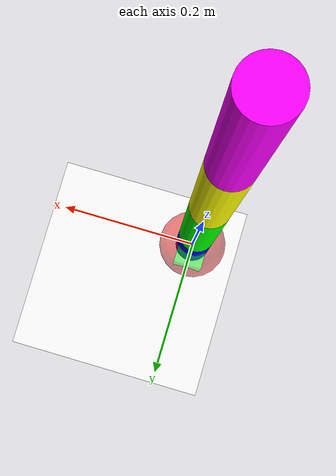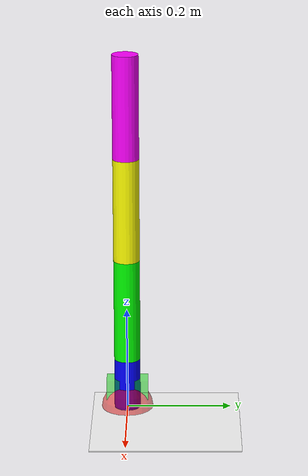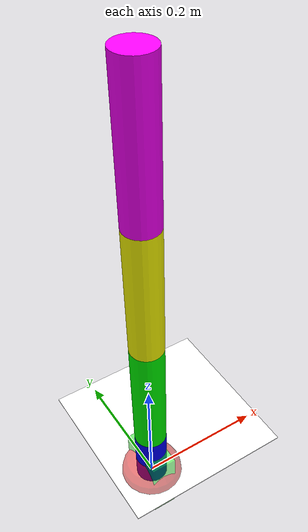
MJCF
<mujoco model="threejoint">

    <custom>
        <numeric name="START_ANGLES" data="0.0 0.0 0.0"/>
    </custom>

    <contact>
        <exclude body1="hand" body2="EE"/>
        <exclude body1="hand" body2="base_link"/>
        <exclude body1="hand" body2="link1"/>
        <exclude body1="hand" body2="link2"/>
        <exclude body1="hand" body2="link3"/>

        <exclude body1="target" body2="EE"/>
        <exclude body1="target" body2="base_link"/>
        <exclude body1="target" body2="link1"/>
        <exclude body1="target" body2="link2"/>
        <exclude body1="target" body2="link3"/>

        <exclude body1="path_planner" body2="EE"/>
        <exclude body1="path_planner" body2="base_link"/>
        <exclude body1="path_planner" body2="link1"/>
        <exclude body1="path_planner" body2="link2"/>
        <exclude body1="path_planner" body2="link3"/>
    </contact>

    <worldbody>
        <body name="hand" pos="0 0 0" mocap="true">
            <geom type="box" size=".02 .04 .06" rgba="0 .9 0 .5" contype="2"/>
        </body>
        <body name="target" pos="0 0 0" mocap="true">
            <geom name="target" type="sphere" size="0.05" rgba=".9 0 0 .5"/>
        </body>
        <body name="path_planner" pos="0 0 0" mocap="true">
            <geom type="sphere" size="0.05" rgba="0 0 1 0.5"/>
        </body>
        <body name="floor" pos="0 0 0" mocap="true">
            <geom type="box" size="1 1 0.001" rgba="0.99 0.99 0.99 1" contype="2"/>
        </body>

        <light pos="0 1 1" dir="0 -1 -1" diffuse="1 1 1"/>

        <body name="base_link" pos="0 0 0.05">
            <geom name="link0" type="cylinder" pos="0 0 0" size="0.025 0.05" rgba="0 0 1 0.9"/>
            <inertial pos="0 0 0" mass="4" diaginertia="0.1 0.1 0.1" />

            <body name="link1" pos="0 0 0.05">
                <joint name='joint0' pos="0 0 0" axis="0 0 1"/>
                <inertial pos="0 0 0.1" mass="2" diaginertia="0.226891 0.226891 0.0151074" />
                <geom name="link1" type="cylinder" pos="0 0 0.1" size="0.025 0.1" rgba="0 1 0 0.9"/>

                <body name="link2" pos="0 0 0.2">
                    <joint name='joint1' pos="0 0 0" axis="0 1 0"/>
                    <inertial pos="0 0 0.1" mass="2" diaginertia="0.226891 0.226891 0.0151074" />
                    <geom name="link2" type="cylinder" pos="0 0 0.1" size="0.025 0.1" rgba="1 1 0 0.9"/>

                    <body name="link3" pos="0 0 0.2">
                        <joint name='joint2' pos="0 0 0" axis="0 1 0"/>
                        <inertial pos="0 0 0.1" mass="2" diaginertia="0.226891 0.226891 0.0151074" />
                        <geom name="link3" type="cylinder" pos="0 0 0.1" size="0.025 0.1" rgba="1 0 1 0.9"/>

                        <body name="EE" pos="0 0 .2">
                            <inertial pos="0 0 0" mass="4" diaginertia="0.3 0.1 0.2" />
                        </body>
                    </body>
                </body>
            </body>
        </body>
    </worldbody>

    <actuator>
        <motor name="joint0_motor" joint="joint0"/>
        <motor name="joint1_motor" joint="joint1"/>
        <motor name="joint2_motor" joint="joint2"/>
    </actuator>

</mujoco>
